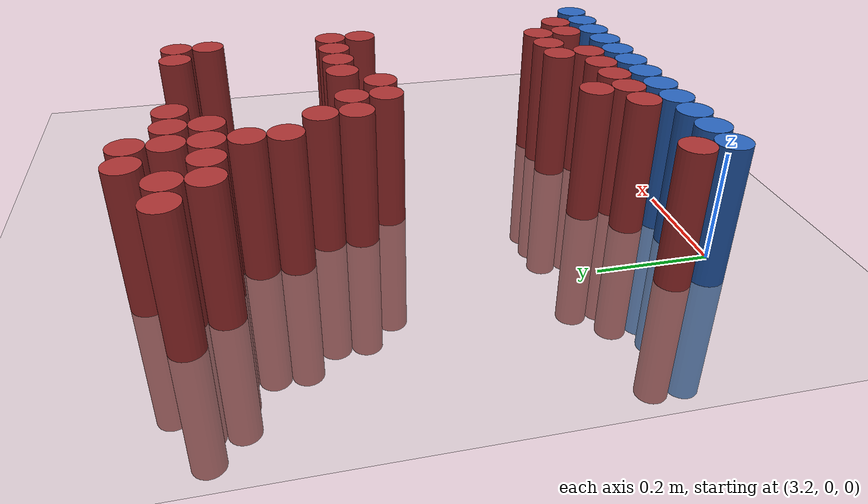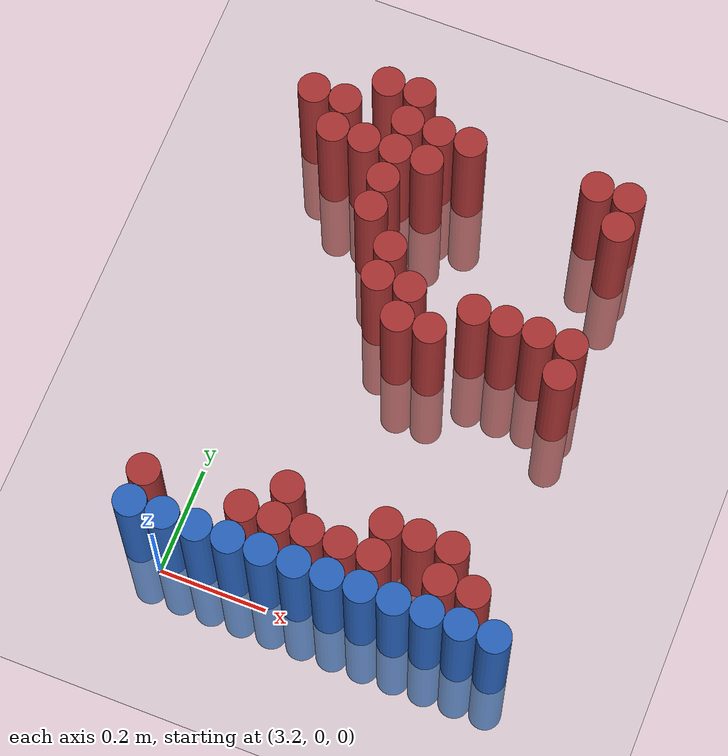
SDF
<sdf version="1.6">
 <world name="default">
  <model name="ground_plane">
   <static>1</static>
   <link name="link">
    <collision name="collision">
     <geometry><plane><normal>0 0 1</normal><size>100 100</size></plane></geometry>
     <surface><friction><ode><mu>100</mu><mu2>50</mu2></ode></friction></surface>
    </collision>
    <visual name="visual">
     <cast_shadows>0</cast_shadows>
     <geometry><plane><normal>0 0 1</normal><size>100 100</size></plane></geometry>
     <material>
      <script><uri>file://media/materials/scripts/gazebo.material</uri><name>Gazebo/Grey</name></script>
     </material>
    </visual>
   </link>
  </model>
  <model name="unit_cylinder_224">
   <static>1</static>
   <pose>3.270000 0.930000 0.000000 0.000000 0.000000 0.000000</pose>
   <link name="link">
    <inertial>
     <mass>1</mass>
     <inertia><ixx>0.145833</ixx><ixy>0</ixy><ixz>0</ixz><iyy>0.145833</iyy><iyz>0</iyz><izz>0.125</izz></inertia>
    </inertial>
    <collision name="collision">
     <geometry><cylinder><radius>0.030000</radius><length>0.5</length></cylinder></geometry>
    </collision>
    <visual name="visual">
     <geometry><cylinder><radius>0.030000</radius><length>0.5</length></cylinder></geometry>
     <material>
      <ambient>0.648000 0.192000 0.192000 1</ambient>
      <diffuse>0.648000 0.192000 0.192000 1</diffuse>
     </material>
     <material>
      <script><name>Gazebo/Grey</name><uri>file://media/materials/scripts/gazebo.material</uri></script>
     </material>
    </visual>
   </link>
  </model>
  <model name="unit_cylinder_225">
   <static>1</static>
   <pose>3.330000 0.930000 0.000000 0.000000 0.000000 0.000000</pose>
   <link name="link">
    <inertial>
     <mass>1</mass>
     <inertia><ixx>0.145833</ixx><ixy>0</ixy><ixz>0</ixz><iyy>0.145833</iyy><iyz>0</iyz><izz>0.125</izz></inertia>
    </inertial>
    <collision name="collision">
     <geometry><cylinder><radius>0.030000</radius><length>0.5</length></cylinder></geometry>
    </collision>
    <visual name="visual">
     <geometry><cylinder><radius>0.030000</radius><length>0.5</length></cylinder></geometry>
     <material>
      <ambient>0.648000 0.192000 0.192000 1</ambient>
      <diffuse>0.648000 0.192000 0.192000 1</diffuse>
     </material>
     <material>
      <script><name>Gazebo/Grey</name><uri>file://media/materials/scripts/gazebo.material</uri></script>
     </material>
    </visual>
   </link>
  </model>
  <model name="unit_cylinder_227">
   <static>1</static>
   <pose>3.150000 0.870000 0.000000 0.000000 0.000000 0.000000</pose>
   <link name="link">
    <inertial>
     <mass>1</mass>
     <inertia><ixx>0.145833</ixx><ixy>0</ixy><ixz>0</ixz><iyy>0.145833</iyy><iyz>0</iyz><izz>0.125</izz></inertia>
    </inertial>
    <collision name="collision">
     <geometry><cylinder><radius>0.030000</radius><length>0.5</length></cylinder></geometry>
    </collision>
    <visual name="visual">
     <geometry><cylinder><radius>0.030000</radius><length>0.5</length></cylinder></geometry>
     <material>
      <ambient>0.648000 0.192000 0.192000 1</ambient>
      <diffuse>0.648000 0.192000 0.192000 1</diffuse>
     </material>
     <material>
      <script><name>Gazebo/Grey</name><uri>file://media/materials/scripts/gazebo.material</uri></script>
     </material>
    </visual>
   </link>
  </model>
  <model name="unit_cylinder_228">
   <static>1</static>
   <pose>3.210000 0.870000 0.000000 0.000000 0.000000 0.000000</pose>
   <link name="link">
    <inertial>
     <mass>1</mass>
     <inertia><ixx>0.145833</ixx><ixy>0</ixy><ixz>0</ixz><iyy>0.145833</iyy><iyz>0</iyz><izz>0.125</izz></inertia>
    </inertial>
    <collision name="collision">
     <geometry><cylinder><radius>0.030000</radius><length>0.5</length></cylinder></geometry>
    </collision>
    <visual name="visual">
     <geometry><cylinder><radius>0.030000</radius><length>0.5</length></cylinder></geometry>
     <material>
      <ambient>0.648000 0.192000 0.192000 1</ambient>
      <diffuse>0.648000 0.192000 0.192000 1</diffuse>
     </material>
     <material>
      <script><name>Gazebo/Grey</name><uri>file://media/materials/scripts/gazebo.material</uri></script>
     </material>
    </visual>
   </link>
  </model>
  <model name="unit_cylinder_229">
   <static>1</static>
   <pose>3.330000 0.870000 0.000000 0.000000 0.000000 0.000000</pose>
   <link name="link">
    <inertial>
     <mass>1</mass>
     <inertia><ixx>0.145833</ixx><ixy>0</ixy><ixz>0</ixz><iyy>0.145833</iyy><iyz>0</iyz><izz>0.125</izz></inertia>
    </inertial>
    <collision name="collision">
     <geometry><cylinder><radius>0.030000</radius><length>0.5</length></cylinder></geometry>
    </collision>
    <visual name="visual">
     <geometry><cylinder><radius>0.030000</radius><length>0.5</length></cylinder></geometry>
     <material>
      <ambient>0.648000 0.192000 0.192000 1</ambient>
      <diffuse>0.648000 0.192000 0.192000 1</diffuse>
     </material>
     <material>
      <script><name>Gazebo/Grey</name><uri>file://media/materials/scripts/gazebo.material</uri></script>
     </material>
    </visual>
   </link>
  </model>
  <model name="unit_cylinder_230">
   <static>1</static>
   <pose>3.390000 0.870000 0.000000 0.000000 0.000000 0.000000</pose>
   <link name="link">
    <inertial>
     <mass>1</mass>
     <inertia><ixx>0.145833</ixx><ixy>0</ixy><ixz>0</ixz><iyy>0.145833</iyy><iyz>0</iyz><izz>0.125</izz></inertia>
    </inertial>
    <collision name="collision">
     <geometry><cylinder><radius>0.030000</radius><length>0.5</length></cylinder></geometry>
    </collision>
    <visual name="visual">
     <geometry><cylinder><radius>0.030000</radius><length>0.5</length></cylinder></geometry>
     <material>
      <ambient>0.648000 0.192000 0.192000 1</ambient>
      <diffuse>0.648000 0.192000 0.192000 1</diffuse>
     </material>
     <material>
      <script><name>Gazebo/Grey</name><uri>file://media/materials/scripts/gazebo.material</uri></script>
     </material>
    </visual>
   </link>
  </model>
  <model name="unit_cylinder_231">
   <static>1</static>
   <pose>3.450000 0.870000 0.000000 0.000000 0.000000 0.000000</pose>
   <link name="link">
    <inertial>
     <mass>1</mass>
     <inertia><ixx>0.145833</ixx><ixy>0</ixy><ixz>0</ixz><iyy>0.145833</iyy><iyz>0</iyz><izz>0.125</izz></inertia>
    </inertial>
    <collision name="collision">
     <geometry><cylinder><radius>0.030000</radius><length>0.5</length></cylinder></geometry>
    </collision>
    <visual name="visual">
     <geometry><cylinder><radius>0.030000</radius><length>0.5</length></cylinder></geometry>
     <material>
      <ambient>0.648000 0.192000 0.192000 1</ambient>
      <diffuse>0.648000 0.192000 0.192000 1</diffuse>
     </material>
     <material>
      <script><name>Gazebo/Grey</name><uri>file://media/materials/scripts/gazebo.material</uri></script>
     </material>
    </visual>
   </link>
  </model>
  <model name="unit_cylinder_232">
   <static>1</static>
   <pose>3.690000 0.870000 0.000000 0.000000 0.000000 0.000000</pose>
   <link name="link">
    <inertial>
     <mass>1</mass>
     <inertia><ixx>0.145833</ixx><ixy>0</ixy><ixz>0</ixz><iyy>0.145833</iyy><iyz>0</iyz><izz>0.125</izz></inertia>
    </inertial>
    <collision name="collision">
     <geometry><cylinder><radius>0.030000</radius><length>0.5</length></cylinder></geometry>
    </collision>
    <visual name="visual">
     <geometry><cylinder><radius>0.030000</radius><length>0.5</length></cylinder></geometry>
     <material>
      <ambient>0.648000 0.192000 0.192000 1</ambient>
      <diffuse>0.648000 0.192000 0.192000 1</diffuse>
     </material>
     <material>
      <script><name>Gazebo/Grey</name><uri>file://media/materials/scripts/gazebo.material</uri></script>
     </material>
    </visual>
   </link>
  </model>
  <model name="unit_cylinder_233">
   <static>1</static>
   <pose>3.750000 0.870000 0.000000 0.000000 0.000000 0.000000</pose>
   <link name="link">
    <inertial>
     <mass>1</mass>
     <inertia><ixx>0.145833</ixx><ixy>0</ixy><ixz>0</ixz><iyy>0.145833</iyy><iyz>0</iyz><izz>0.125</izz></inertia>
    </inertial>
    <collision name="collision">
     <geometry><cylinder><radius>0.030000</radius><length>0.5</length></cylinder></geometry>
    </collision>
    <visual name="visual">
     <geometry><cylinder><radius>0.030000</radius><length>0.5</length></cylinder></geometry>
     <material>
      <ambient>0.648000 0.192000 0.192000 1</ambient>
      <diffuse>0.648000 0.192000 0.192000 1</diffuse>
     </material>
     <material>
      <script><name>Gazebo/Grey</name><uri>file://media/materials/scripts/gazebo.material</uri></script>
     </material>
    </visual>
   </link>
  </model>
  <model name="unit_cylinder_237">
   <static>1</static>
   <pose>3.210000 0.810000 0.000000 0.000000 0.000000 0.000000</pose>
   <link name="link">
    <inertial>
     <mass>1</mass>
     <inertia><ixx>0.145833</ixx><ixy>0</ixy><ixz>0</ixz><iyy>0.145833</iyy><iyz>0</iyz><izz>0.125</izz></inertia>
    </inertial>
    <collision name="collision">
     <geometry><cylinder><radius>0.030000</radius><length>0.5</length></cylinder></geometry>
    </collision>
    <visual name="visual">
     <geometry><cylinder><radius>0.030000</radius><length>0.5</length></cylinder></geometry>
     <material>
      <ambient>0.648000 0.192000 0.192000 1</ambient>
      <diffuse>0.648000 0.192000 0.192000 1</diffuse>
     </material>
     <material>
      <script><name>Gazebo/Grey</name><uri>file://media/materials/scripts/gazebo.material</uri></script>
     </material>
    </visual>
   </link>
  </model>
  <model name="unit_cylinder_238">
   <static>1</static>
   <pose>3.270000 0.810000 0.000000 0.000000 0.000000 0.000000</pose>
   <link name="link">
    <inertial>
     <mass>1</mass>
     <inertia><ixx>0.145833</ixx><ixy>0</ixy><ixz>0</ixz><iyy>0.145833</iyy><iyz>0</iyz><izz>0.125</izz></inertia>
    </inertial>
    <collision name="collision">
     <geometry><cylinder><radius>0.030000</radius><length>0.5</length></cylinder></geometry>
    </collision>
    <visual name="visual">
     <geometry><cylinder><radius>0.030000</radius><length>0.5</length></cylinder></geometry>
     <material>
      <ambient>0.648000 0.192000 0.192000 1</ambient>
      <diffuse>0.648000 0.192000 0.192000 1</diffuse>
     </material>
     <material>
      <script><name>Gazebo/Grey</name><uri>file://media/materials/scripts/gazebo.material</uri></script>
     </material>
    </visual>
   </link>
  </model>
  <model name="unit_cylinder_239">
   <static>1</static>
   <pose>3.330000 0.810000 0.000000 0.000000 0.000000 0.000000</pose>
   <link name="link">
    <inertial>
     <mass>1</mass>
     <inertia><ixx>0.145833</ixx><ixy>0</ixy><ixz>0</ixz><iyy>0.145833</iyy><iyz>0</iyz><izz>0.125</izz></inertia>
    </inertial>
    <collision name="collision">
     <geometry><cylinder><radius>0.030000</radius><length>0.5</length></cylinder></geometry>
    </collision>
    <visual name="visual">
     <geometry><cylinder><radius>0.030000</radius><length>0.5</length></cylinder></geometry>
     <material>
      <ambient>0.648000 0.192000 0.192000 1</ambient>
      <diffuse>0.648000 0.192000 0.192000 1</diffuse>
     </material>
     <material>
      <script><name>Gazebo/Grey</name><uri>file://media/materials/scripts/gazebo.material</uri></script>
     </material>
    </visual>
   </link>
  </model>
  <model name="unit_cylinder_240">
   <static>1</static>
   <pose>3.390000 0.810000 0.000000 0.000000 0.000000 0.000000</pose>
   <link name="link">
    <inertial>
     <mass>1</mass>
     <inertia><ixx>0.145833</ixx><ixy>0</ixy><ixz>0</ixz><iyy>0.145833</iyy><iyz>0</iyz><izz>0.125</izz></inertia>
    </inertial>
    <collision name="collision">
     <geometry><cylinder><radius>0.030000</radius><length>0.5</length></cylinder></geometry>
    </collision>
    <visual name="visual">
     <geometry><cylinder><radius>0.030000</radius><length>0.5</length></cylinder></geometry>
     <material>
      <ambient>0.648000 0.192000 0.192000 1</ambient>
      <diffuse>0.648000 0.192000 0.192000 1</diffuse>
     </material>
     <material>
      <script><name>Gazebo/Grey</name><uri>file://media/materials/scripts/gazebo.material</uri></script>
     </material>
    </visual>
   </link>
  </model>
  <model name="unit_cylinder_241">
   <static>1</static>
   <pose>3.750000 0.810000 0.000000 0.000000 0.000000 0.000000</pose>
   <link name="link">
    <inertial>
     <mass>1</mass>
     <inertia><ixx>0.145833</ixx><ixy>0</ixy><ixz>0</ixz><iyy>0.145833</iyy><iyz>0</iyz><izz>0.125</izz></inertia>
    </inertial>
    <collision name="collision">
     <geometry><cylinder><radius>0.030000</radius><length>0.5</length></cylinder></geometry>
    </collision>
    <visual name="visual">
     <geometry><cylinder><radius>0.030000</radius><length>0.5</length></cylinder></geometry>
     <material>
      <ambient>0.648000 0.192000 0.192000 1</ambient>
      <diffuse>0.648000 0.192000 0.192000 1</diffuse>
     </material>
     <material>
      <script><name>Gazebo/Grey</name><uri>file://media/materials/scripts/gazebo.material</uri></script>
     </material>
    </visual>
   </link>
  </model>
  <model name="unit_cylinder_245">
   <static>1</static>
   <pose>3.330000 0.750000 0.000000 0.000000 0.000000 0.000000</pose>
   <link name="link">
    <inertial>
     <mass>1</mass>
     <inertia><ixx>0.145833</ixx><ixy>0</ixy><ixz>0</ixz><iyy>0.145833</iyy><iyz>0</iyz><izz>0.125</izz></inertia>
    </inertial>
    <collision name="collision">
     <geometry><cylinder><radius>0.030000</radius><length>0.5</length></cylinder></geometry>
    </collision>
    <visual name="visual">
     <geometry><cylinder><radius>0.030000</radius><length>0.5</length></cylinder></geometry>
     <material>
      <ambient>0.648000 0.192000 0.192000 1</ambient>
      <diffuse>0.648000 0.192000 0.192000 1</diffuse>
     </material>
     <material>
      <script><name>Gazebo/Grey</name><uri>file://media/materials/scripts/gazebo.material</uri></script>
     </material>
    </visual>
   </link>
  </model>
  <model name="unit_cylinder_249">
   <static>1</static>
   <pose>3.330000 0.690000 0.000000 0.000000 0.000000 0.000000</pose>
   <link name="link">
    <inertial>
     <mass>1</mass>
     <inertia><ixx>0.145833</ixx><ixy>0</ixy><ixz>0</ixz><iyy>0.145833</iyy><iyz>0</iyz><izz>0.125</izz></inertia>
    </inertial>
    <collision name="collision">
     <geometry><cylinder><radius>0.030000</radius><length>0.5</length></cylinder></geometry>
    </collision>
    <visual name="visual">
     <geometry><cylinder><radius>0.030000</radius><length>0.5</length></cylinder></geometry>
     <material>
      <ambient>0.648000 0.192000 0.192000 1</ambient>
      <diffuse>0.648000 0.192000 0.192000 1</diffuse>
     </material>
     <material>
      <script><name>Gazebo/Grey</name><uri>file://media/materials/scripts/gazebo.material</uri></script>
     </material>
    </visual>
   </link>
  </model>
  <model name="unit_cylinder_252">
   <static>1</static>
   <pose>3.390000 0.630000 0.000000 0.000000 0.000000 0.000000</pose>
   <link name="link">
    <inertial>
     <mass>1</mass>
     <inertia><ixx>0.145833</ixx><ixy>0</ixy><ixz>0</ixz><iyy>0.145833</iyy><iyz>0</iyz><izz>0.125</izz></inertia>
    </inertial>
    <collision name="collision">
     <geometry><cylinder><radius>0.030000</radius><length>0.5</length></cylinder></geometry>
    </collision>
    <visual name="visual">
     <geometry><cylinder><radius>0.030000</radius><length>0.5</length></cylinder></geometry>
     <material>
      <ambient>0.648000 0.192000 0.192000 1</ambient>
      <diffuse>0.648000 0.192000 0.192000 1</diffuse>
     </material>
     <material>
      <script><name>Gazebo/Grey</name><uri>file://media/materials/scripts/gazebo.material</uri></script>
     </material>
    </visual>
   </link>
  </model>
  <model name="unit_cylinder_256">
   <static>1</static>
   <pose>3.390000 0.570000 0.000000 0.000000 0.000000 0.000000</pose>
   <link name="link">
    <inertial>
     <mass>1</mass>
     <inertia><ixx>0.145833</ixx><ixy>0</ixy><ixz>0</ixz><iyy>0.145833</iyy><iyz>0</iyz><izz>0.125</izz></inertia>
    </inertial>
    <collision name="collision">
     <geometry><cylinder><radius>0.030000</radius><length>0.5</length></cylinder></geometry>
    </collision>
    <visual name="visual">
     <geometry><cylinder><radius>0.030000</radius><length>0.5</length></cylinder></geometry>
     <material>
      <ambient>0.648000 0.192000 0.192000 1</ambient>
      <diffuse>0.648000 0.192000 0.192000 1</diffuse>
     </material>
     <material>
      <script><name>Gazebo/Grey</name><uri>file://media/materials/scripts/gazebo.material</uri></script>
     </material>
    </visual>
   </link>
  </model>
  <model name="unit_cylinder_257">
   <static>1</static>
   <pose>3.450000 0.570000 0.000000 0.000000 0.000000 0.000000</pose>
   <link name="link">
    <inertial>
     <mass>1</mass>
     <inertia><ixx>0.145833</ixx><ixy>0</ixy><ixz>0</ixz><iyy>0.145833</iyy><iyz>0</iyz><izz>0.125</izz></inertia>
    </inertial>
    <collision name="collision">
     <geometry><cylinder><radius>0.030000</radius><length>0.5</length></cylinder></geometry>
    </collision>
    <visual name="visual">
     <geometry><cylinder><radius>0.030000</radius><length>0.5</length></cylinder></geometry>
     <material>
      <ambient>0.648000 0.192000 0.192000 1</ambient>
      <diffuse>0.648000 0.192000 0.192000 1</diffuse>
     </material>
     <material>
      <script><name>Gazebo/Grey</name><uri>file://media/materials/scripts/gazebo.material</uri></script>
     </material>
    </visual>
   </link>
  </model>
  <model name="unit_cylinder_258">
   <static>1</static>
   <pose>3.570000 0.570000 0.000000 0.000000 0.000000 0.000000</pose>
   <link name="link">
    <inertial>
     <mass>1</mass>
     <inertia><ixx>0.145833</ixx><ixy>0</ixy><ixz>0</ixz><iyy>0.145833</iyy><iyz>0</iyz><izz>0.125</izz></inertia>
    </inertial>
    <collision name="collision">
     <geometry><cylinder><radius>0.030000</radius><length>0.5</length></cylinder></geometry>
    </collision>
    <visual name="visual">
     <geometry><cylinder><radius>0.030000</radius><length>0.5</length></cylinder></geometry>
     <material>
      <ambient>0.648000 0.192000 0.192000 1</ambient>
      <diffuse>0.648000 0.192000 0.192000 1</diffuse>
     </material>
     <material>
      <script><name>Gazebo/Grey</name><uri>file://media/materials/scripts/gazebo.material</uri></script>
     </material>
    </visual>
   </link>
  </model>
  <model name="unit_cylinder_259">
   <static>1</static>
   <pose>3.630000 0.570000 0.000000 0.000000 0.000000 0.000000</pose>
   <link name="link">
    <inertial>
     <mass>1</mass>
     <inertia><ixx>0.145833</ixx><ixy>0</ixy><ixz>0</ixz><iyy>0.145833</iyy><iyz>0</iyz><izz>0.125</izz></inertia>
    </inertial>
    <collision name="collision">
     <geometry><cylinder><radius>0.030000</radius><length>0.5</length></cylinder></geometry>
    </collision>
    <visual name="visual">
     <geometry><cylinder><radius>0.030000</radius><length>0.5</length></cylinder></geometry>
     <material>
      <ambient>0.648000 0.192000 0.192000 1</ambient>
      <diffuse>0.648000 0.192000 0.192000 1</diffuse>
     </material>
     <material>
      <script><name>Gazebo/Grey</name><uri>file://media/materials/scripts/gazebo.material</uri></script>
     </material>
    </visual>
   </link>
  </model>
  <model name="unit_cylinder_260">
   <static>1</static>
   <pose>3.690000 0.570000 0.000000 0.000000 0.000000 0.000000</pose>
   <link name="link">
    <inertial>
     <mass>1</mass>
     <inertia><ixx>0.145833</ixx><ixy>0</ixy><ixz>0</ixz><iyy>0.145833</iyy><iyz>0</iyz><izz>0.125</izz></inertia>
    </inertial>
    <collision name="collision">
     <geometry><cylinder><radius>0.030000</radius><length>0.5</length></cylinder></geometry>
    </collision>
    <visual name="visual">
     <geometry><cylinder><radius>0.030000</radius><length>0.5</length></cylinder></geometry>
     <material>
      <ambient>0.648000 0.192000 0.192000 1</ambient>
      <diffuse>0.648000 0.192000 0.192000 1</diffuse>
     </material>
     <material>
      <script><name>Gazebo/Grey</name><uri>file://media/materials/scripts/gazebo.material</uri></script>
     </material>
    </visual>
   </link>
  </model>
  <model name="unit_cylinder_261">
   <static>1</static>
   <pose>3.750000 0.570000 0.000000 0.000000 0.000000 0.000000</pose>
   <link name="link">
    <inertial>
     <mass>1</mass>
     <inertia><ixx>0.145833</ixx><ixy>0</ixy><ixz>0</ixz><iyy>0.145833</iyy><iyz>0</iyz><izz>0.125</izz></inertia>
    </inertial>
    <collision name="collision">
     <geometry><cylinder><radius>0.030000</radius><length>0.5</length></cylinder></geometry>
    </collision>
    <visual name="visual">
     <geometry><cylinder><radius>0.030000</radius><length>0.5</length></cylinder></geometry>
     <material>
      <ambient>0.648000 0.192000 0.192000 1</ambient>
      <diffuse>0.648000 0.192000 0.192000 1</diffuse>
     </material>
     <material>
      <script><name>Gazebo/Grey</name><uri>file://media/materials/scripts/gazebo.material</uri></script>
     </material>
    </visual>
   </link>
  </model>
  <model name="unit_cylinder_267">
   <static>1</static>
   <pose>3.450000 0.510000 0.000000 0.000000 0.000000 0.000000</pose>
   <link name="link">
    <inertial>
     <mass>1</mass>
     <inertia><ixx>0.145833</ixx><ixy>0</ixy><ixz>0</ixz><iyy>0.145833</iyy><iyz>0</iyz><izz>0.125</izz></inertia>
    </inertial>
    <collision name="collision">
     <geometry><cylinder><radius>0.030000</radius><length>0.5</length></cylinder></geometry>
    </collision>
    <visual name="visual">
     <geometry><cylinder><radius>0.030000</radius><length>0.5</length></cylinder></geometry>
     <material>
      <ambient>0.648000 0.192000 0.192000 1</ambient>
      <diffuse>0.648000 0.192000 0.192000 1</diffuse>
     </material>
     <material>
      <script><name>Gazebo/Grey</name><uri>file://media/materials/scripts/gazebo.material</uri></script>
     </material>
    </visual>
   </link>
  </model>
  <model name="unit_cylinder_268">
   <static>1</static>
   <pose>3.510000 0.510000 0.000000 0.000000 0.000000 0.000000</pose>
   <link name="link">
    <inertial>
     <mass>1</mass>
     <inertia><ixx>0.145833</ixx><ixy>0</ixy><ixz>0</ixz><iyy>0.145833</iyy><iyz>0</iyz><izz>0.125</izz></inertia>
    </inertial>
    <collision name="collision">
     <geometry><cylinder><radius>0.030000</radius><length>0.5</length></cylinder></geometry>
    </collision>
    <visual name="visual">
     <geometry><cylinder><radius>0.030000</radius><length>0.5</length></cylinder></geometry>
     <material>
      <ambient>0.648000 0.192000 0.192000 1</ambient>
      <diffuse>0.648000 0.192000 0.192000 1</diffuse>
     </material>
     <material>
      <script><name>Gazebo/Grey</name><uri>file://media/materials/scripts/gazebo.material</uri></script>
     </material>
    </visual>
   </link>
  </model>
  <model name="unit_cylinder_269">
   <static>1</static>
   <pose>3.750000 0.510000 0.000000 0.000000 0.000000 0.000000</pose>
   <link name="link">
    <inertial>
     <mass>1</mass>
     <inertia><ixx>0.145833</ixx><ixy>0</ixy><ixz>0</ixz><iyy>0.145833</iyy><iyz>0</iyz><izz>0.125</izz></inertia>
    </inertial>
    <collision name="collision">
     <geometry><cylinder><radius>0.030000</radius><length>0.5</length></cylinder></geometry>
    </collision>
    <visual name="visual">
     <geometry><cylinder><radius>0.030000</radius><length>0.5</length></cylinder></geometry>
     <material>
      <ambient>0.648000 0.192000 0.192000 1</ambient>
      <diffuse>0.648000 0.192000 0.192000 1</diffuse>
     </material>
     <material>
      <script><name>Gazebo/Grey</name><uri>file://media/materials/scripts/gazebo.material</uri></script>
     </material>
    </visual>
   </link>
  </model>
  <model name="unit_cylinder_290">
   <static>1</static>
   <pose>3.390000 0.150000 0.000000 0.000000 0.000000 0.000000</pose>
   <link name="link">
    <inertial>
     <mass>1</mass>
     <inertia><ixx>0.145833</ixx><ixy>0</ixy><ixz>0</ixz><iyy>0.145833</iyy><iyz>0</iyz><izz>0.125</izz></inertia>
    </inertial>
    <collision name="collision">
     <geometry><cylinder><radius>0.030000</radius><length>0.5</length></cylinder></geometry>
    </collision>
    <visual name="visual">
     <geometry><cylinder><radius>0.030000</radius><length>0.5</length></cylinder></geometry>
     <material>
      <ambient>0.648000 0.192000 0.192000 1</ambient>
      <diffuse>0.648000 0.192000 0.192000 1</diffuse>
     </material>
     <material>
      <script><name>Gazebo/Grey</name><uri>file://media/materials/scripts/gazebo.material</uri></script>
     </material>
    </visual>
   </link>
  </model>
  <model name="unit_cylinder_291">
   <static>1</static>
   <pose>3.570000 0.150000 0.000000 0.000000 0.000000 0.000000</pose>
   <link name="link">
    <inertial>
     <mass>1</mass>
     <inertia><ixx>0.145833</ixx><ixy>0</ixy><ixz>0</ixz><iyy>0.145833</iyy><iyz>0</iyz><izz>0.125</izz></inertia>
    </inertial>
    <collision name="collision">
     <geometry><cylinder><radius>0.030000</radius><length>0.5</length></cylinder></geometry>
    </collision>
    <visual name="visual">
     <geometry><cylinder><radius>0.030000</radius><length>0.5</length></cylinder></geometry>
     <material>
      <ambient>0.648000 0.192000 0.192000 1</ambient>
      <diffuse>0.648000 0.192000 0.192000 1</diffuse>
     </material>
     <material>
      <script><name>Gazebo/Grey</name><uri>file://media/materials/scripts/gazebo.material</uri></script>
     </material>
    </visual>
   </link>
  </model>
  <model name="unit_cylinder_292">
   <static>1</static>
   <pose>3.630000 0.150000 0.000000 0.000000 0.000000 0.000000</pose>
   <link name="link">
    <inertial>
     <mass>1</mass>
     <inertia><ixx>0.145833</ixx><ixy>0</ixy><ixz>0</ixz><iyy>0.145833</iyy><iyz>0</iyz><izz>0.125</izz></inertia>
    </inertial>
    <collision name="collision">
     <geometry><cylinder><radius>0.030000</radius><length>0.5</length></cylinder></geometry>
    </collision>
    <visual name="visual">
     <geometry><cylinder><radius>0.030000</radius><length>0.5</length></cylinder></geometry>
     <material>
      <ambient>0.648000 0.192000 0.192000 1</ambient>
      <diffuse>0.648000 0.192000 0.192000 1</diffuse>
     </material>
     <material>
      <script><name>Gazebo/Grey</name><uri>file://media/materials/scripts/gazebo.material</uri></script>
     </material>
    </visual>
   </link>
  </model>
  <model name="unit_cylinder_293">
   <static>1</static>
   <pose>3.690000 0.150000 0.000000 0.000000 0.000000 0.000000</pose>
   <link name="link">
    <inertial>
     <mass>1</mass>
     <inertia><ixx>0.145833</ixx><ixy>0</ixy><ixz>0</ixz><iyy>0.145833</iyy><iyz>0</iyz><izz>0.125</izz></inertia>
    </inertial>
    <collision name="collision">
     <geometry><cylinder><radius>0.030000</radius><length>0.5</length></cylinder></geometry>
    </collision>
    <visual name="visual">
     <geometry><cylinder><radius>0.030000</radius><length>0.5</length></cylinder></geometry>
     <material>
      <ambient>0.648000 0.192000 0.192000 1</ambient>
      <diffuse>0.648000 0.192000 0.192000 1</diffuse>
     </material>
     <material>
      <script><name>Gazebo/Grey</name><uri>file://media/materials/scripts/gazebo.material</uri></script>
     </material>
    </visual>
   </link>
  </model>
  <model name="unit_cylinder_309">
   <static>1</static>
   <pose>3.150000 0.090000 0.000000 0.000000 0.000000 0.000000</pose>
   <link name="link">
    <inertial>
     <mass>1</mass>
     <inertia><ixx>0.145833</ixx><ixy>0</ixy><ixz>0</ixz><iyy>0.145833</iyy><iyz>0</iyz><izz>0.125</izz></inertia>
    </inertial>
    <collision name="collision">
     <geometry><cylinder><radius>0.030000</radius><length>0.5</length></cylinder></geometry>
    </collision>
    <visual name="visual">
     <geometry><cylinder><radius>0.030000</radius><length>0.5</length></cylinder></geometry>
     <material>
      <ambient>0.648000 0.192000 0.192000 1</ambient>
      <diffuse>0.648000 0.192000 0.192000 1</diffuse>
     </material>
     <material>
      <script><name>Gazebo/Grey</name><uri>file://media/materials/scripts/gazebo.material</uri></script>
     </material>
    </visual>
   </link>
  </model>
  <model name="unit_cylinder_310">
   <static>1</static>
   <pose>3.330000 0.090000 0.000000 0.000000 0.000000 0.000000</pose>
   <link name="link">
    <inertial>
     <mass>1</mass>
     <inertia><ixx>0.145833</ixx><ixy>0</ixy><ixz>0</ixz><iyy>0.145833</iyy><iyz>0</iyz><izz>0.125</izz></inertia>
    </inertial>
    <collision name="collision">
     <geometry><cylinder><radius>0.030000</radius><length>0.5</length></cylinder></geometry>
    </collision>
    <visual name="visual">
     <geometry><cylinder><radius>0.030000</radius><length>0.5</length></cylinder></geometry>
     <material>
      <ambient>0.648000 0.192000 0.192000 1</ambient>
      <diffuse>0.648000 0.192000 0.192000 1</diffuse>
     </material>
     <material>
      <script><name>Gazebo/Grey</name><uri>file://media/materials/scripts/gazebo.material</uri></script>
     </material>
    </visual>
   </link>
  </model>
  <model name="unit_cylinder_311">
   <static>1</static>
   <pose>3.390000 0.090000 0.000000 0.000000 0.000000 0.000000</pose>
   <link name="link">
    <inertial>
     <mass>1</mass>
     <inertia><ixx>0.145833</ixx><ixy>0</ixy><ixz>0</ixz><iyy>0.145833</iyy><iyz>0</iyz><izz>0.125</izz></inertia>
    </inertial>
    <collision name="collision">
     <geometry><cylinder><radius>0.030000</radius><length>0.5</length></cylinder></geometry>
    </collision>
    <visual name="visual">
     <geometry><cylinder><radius>0.030000</radius><length>0.5</length></cylinder></geometry>
     <material>
      <ambient>0.648000 0.192000 0.192000 1</ambient>
      <diffuse>0.648000 0.192000 0.192000 1</diffuse>
     </material>
     <material>
      <script><name>Gazebo/Grey</name><uri>file://media/materials/scripts/gazebo.material</uri></script>
     </material>
    </visual>
   </link>
  </model>
  <model name="unit_cylinder_312">
   <static>1</static>
   <pose>3.450000 0.090000 0.000000 0.000000 0.000000 0.000000</pose>
   <link name="link">
    <inertial>
     <mass>1</mass>
     <inertia><ixx>0.145833</ixx><ixy>0</ixy><ixz>0</ixz><iyy>0.145833</iyy><iyz>0</iyz><izz>0.125</izz></inertia>
    </inertial>
    <collision name="collision">
     <geometry><cylinder><radius>0.030000</radius><length>0.5</length></cylinder></geometry>
    </collision>
    <visual name="visual">
     <geometry><cylinder><radius>0.030000</radius><length>0.5</length></cylinder></geometry>
     <material>
      <ambient>0.648000 0.192000 0.192000 1</ambient>
      <diffuse>0.648000 0.192000 0.192000 1</diffuse>
     </material>
     <material>
      <script><name>Gazebo/Grey</name><uri>file://media/materials/scripts/gazebo.material</uri></script>
     </material>
    </visual>
   </link>
  </model>
  <model name="unit_cylinder_313">
   <static>1</static>
   <pose>3.510000 0.090000 0.000000 0.000000 0.000000 0.000000</pose>
   <link name="link">
    <inertial>
     <mass>1</mass>
     <inertia><ixx>0.145833</ixx><ixy>0</ixy><ixz>0</ixz><iyy>0.145833</iyy><iyz>0</iyz><izz>0.125</izz></inertia>
    </inertial>
    <collision name="collision">
     <geometry><cylinder><radius>0.030000</radius><length>0.5</length></cylinder></geometry>
    </collision>
    <visual name="visual">
     <geometry><cylinder><radius>0.030000</radius><length>0.5</length></cylinder></geometry>
     <material>
      <ambient>0.648000 0.192000 0.192000 1</ambient>
      <diffuse>0.648000 0.192000 0.192000 1</diffuse>
     </material>
     <material>
      <script><name>Gazebo/Grey</name><uri>file://media/materials/scripts/gazebo.material</uri></script>
     </material>
    </visual>
   </link>
  </model>
  <model name="unit_cylinder_314">
   <static>1</static>
   <pose>3.570000 0.090000 0.000000 0.000000 0.000000 0.000000</pose>
   <link name="link">
    <inertial>
     <mass>1</mass>
     <inertia><ixx>0.145833</ixx><ixy>0</ixy><ixz>0</ixz><iyy>0.145833</iyy><iyz>0</iyz><izz>0.125</izz></inertia>
    </inertial>
    <collision name="collision">
     <geometry><cylinder><radius>0.030000</radius><length>0.5</length></cylinder></geometry>
    </collision>
    <visual name="visual">
     <geometry><cylinder><radius>0.030000</radius><length>0.5</length></cylinder></geometry>
     <material>
      <ambient>0.648000 0.192000 0.192000 1</ambient>
      <diffuse>0.648000 0.192000 0.192000 1</diffuse>
     </material>
     <material>
      <script><name>Gazebo/Grey</name><uri>file://media/materials/scripts/gazebo.material</uri></script>
     </material>
    </visual>
   </link>
  </model>
  <model name="unit_cylinder_315">
   <static>1</static>
   <pose>3.690000 0.090000 0.000000 0.000000 0.000000 0.000000</pose>
   <link name="link">
    <inertial>
     <mass>1</mass>
     <inertia><ixx>0.145833</ixx><ixy>0</ixy><ixz>0</ixz><iyy>0.145833</iyy><iyz>0</iyz><izz>0.125</izz></inertia>
    </inertial>
    <collision name="collision">
     <geometry><cylinder><radius>0.030000</radius><length>0.5</length></cylinder></geometry>
    </collision>
    <visual name="visual">
     <geometry><cylinder><radius>0.030000</radius><length>0.5</length></cylinder></geometry>
     <material>
      <ambient>0.648000 0.192000 0.192000 1</ambient>
      <diffuse>0.648000 0.192000 0.192000 1</diffuse>
     </material>
     <material>
      <script><name>Gazebo/Grey</name><uri>file://media/materials/scripts/gazebo.material</uri></script>
     </material>
    </visual>
   </link>
  </model>
  <model name="unit_cylinder_316">
   <static>1</static>
   <pose>3.750000 0.090000 0.000000 0.000000 0.000000 0.000000</pose>
   <link name="link">
    <inertial>
     <mass>1</mass>
     <inertia><ixx>0.145833</ixx><ixy>0</ixy><ixz>0</ixz><iyy>0.145833</iyy><iyz>0</iyz><izz>0.125</izz></inertia>
    </inertial>
    <collision name="collision">
     <geometry><cylinder><radius>0.030000</radius><length>0.5</length></cylinder></geometry>
    </collision>
    <visual name="visual">
     <geometry><cylinder><radius>0.030000</radius><length>0.5</length></cylinder></geometry>
     <material>
      <ambient>0.648000 0.192000 0.192000 1</ambient>
      <diffuse>0.648000 0.192000 0.192000 1</diffuse>
     </material>
     <material>
      <script><name>Gazebo/Grey</name><uri>file://media/materials/scripts/gazebo.material</uri></script>
     </material>
    </visual>
   </link>
  </model>
  <model name="unit_cylinder_335">
   <static>1</static>
   <pose>3.150000 0.030000 0.000000 0.000000 0.000000 0.000000</pose>
   <link name="link">
    <inertial>
     <mass>1</mass>
     <inertia><ixx>0.145833</ixx><ixy>0</ixy><ixz>0</ixz><iyy>0.145833</iyy><iyz>0</iyz><izz>0.125</izz></inertia>
    </inertial>
    <collision name="collision">
     <geometry><cylinder><radius>0.030000</radius><length>0.5</length></cylinder></geometry>
    </collision>
    <visual name="visual">
     <geometry><cylinder><radius>0.030000</radius><length>0.5</length></cylinder></geometry>
     <material>
      <ambient>0.152000 0.379000 0.720000 1</ambient>
      <diffuse>0.152000 0.379000 0.720000 1</diffuse>
     </material>
     <material>
      <script><name>Gazebo/Grey</name><uri>file://media/materials/scripts/gazebo.material</uri></script>
     </material>
    </visual>
   </link>
  </model>
  <model name="unit_cylinder_336">
   <static>1</static>
   <pose>3.210000 0.030000 0.000000 0.000000 0.000000 0.000000</pose>
   <link name="link">
    <inertial>
     <mass>1</mass>
     <inertia><ixx>0.145833</ixx><ixy>0</ixy><ixz>0</ixz><iyy>0.145833</iyy><iyz>0</iyz><izz>0.125</izz></inertia>
    </inertial>
    <collision name="collision">
     <geometry><cylinder><radius>0.030000</radius><length>0.5</length></cylinder></geometry>
    </collision>
    <visual name="visual">
     <geometry><cylinder><radius>0.030000</radius><length>0.5</length></cylinder></geometry>
     <material>
      <ambient>0.152000 0.379000 0.720000 1</ambient>
      <diffuse>0.152000 0.379000 0.720000 1</diffuse>
     </material>
     <material>
      <script><name>Gazebo/Grey</name><uri>file://media/materials/scripts/gazebo.material</uri></script>
     </material>
    </visual>
   </link>
  </model>
  <model name="unit_cylinder_337">
   <static>1</static>
   <pose>3.270000 0.030000 0.000000 0.000000 0.000000 0.000000</pose>
   <link name="link">
    <inertial>
     <mass>1</mass>
     <inertia><ixx>0.145833</ixx><ixy>0</ixy><ixz>0</ixz><iyy>0.145833</iyy><iyz>0</iyz><izz>0.125</izz></inertia>
    </inertial>
    <collision name="collision">
     <geometry><cylinder><radius>0.030000</radius><length>0.5</length></cylinder></geometry>
    </collision>
    <visual name="visual">
     <geometry><cylinder><radius>0.030000</radius><length>0.5</length></cylinder></geometry>
     <material>
      <ambient>0.152000 0.379000 0.720000 1</ambient>
      <diffuse>0.152000 0.379000 0.720000 1</diffuse>
     </material>
     <material>
      <script><name>Gazebo/Grey</name><uri>file://media/materials/scripts/gazebo.material</uri></script>
     </material>
    </visual>
   </link>
  </model>
  <model name="unit_cylinder_338">
   <static>1</static>
   <pose>3.330000 0.030000 0.000000 0.000000 0.000000 0.000000</pose>
   <link name="link">
    <inertial>
     <mass>1</mass>
     <inertia><ixx>0.145833</ixx><ixy>0</ixy><ixz>0</ixz><iyy>0.145833</iyy><iyz>0</iyz><izz>0.125</izz></inertia>
    </inertial>
    <collision name="collision">
     <geometry><cylinder><radius>0.030000</radius><length>0.5</length></cylinder></geometry>
    </collision>
    <visual name="visual">
     <geometry><cylinder><radius>0.030000</radius><length>0.5</length></cylinder></geometry>
     <material>
      <ambient>0.152000 0.379000 0.720000 1</ambient>
      <diffuse>0.152000 0.379000 0.720000 1</diffuse>
     </material>
     <material>
      <script><name>Gazebo/Grey</name><uri>file://media/materials/scripts/gazebo.material</uri></script>
     </material>
    </visual>
   </link>
  </model>
  <model name="unit_cylinder_339">
   <static>1</static>
   <pose>3.390000 0.030000 0.000000 0.000000 0.000000 0.000000</pose>
   <link name="link">
    <inertial>
     <mass>1</mass>
     <inertia><ixx>0.145833</ixx><ixy>0</ixy><ixz>0</ixz><iyy>0.145833</iyy><iyz>0</iyz><izz>0.125</izz></inertia>
    </inertial>
    <collision name="collision">
     <geometry><cylinder><radius>0.030000</radius><length>0.5</length></cylinder></geometry>
    </collision>
    <visual name="visual">
     <geometry><cylinder><radius>0.030000</radius><length>0.5</length></cylinder></geometry>
     <material>
      <ambient>0.152000 0.379000 0.720000 1</ambient>
      <diffuse>0.152000 0.379000 0.720000 1</diffuse>
     </material>
     <material>
      <script><name>Gazebo/Grey</name><uri>file://media/materials/scripts/gazebo.material</uri></script>
     </material>
    </visual>
   </link>
  </model>
  <model name="unit_cylinder_340">
   <static>1</static>
   <pose>3.450000 0.030000 0.000000 0.000000 0.000000 0.000000</pose>
   <link name="link">
    <inertial>
     <mass>1</mass>
     <inertia><ixx>0.145833</ixx><ixy>0</ixy><ixz>0</ixz><iyy>0.145833</iyy><iyz>0</iyz><izz>0.125</izz></inertia>
    </inertial>
    <collision name="collision">
     <geometry><cylinder><radius>0.030000</radius><length>0.5</length></cylinder></geometry>
    </collision>
    <visual name="visual">
     <geometry><cylinder><radius>0.030000</radius><length>0.5</length></cylinder></geometry>
     <material>
      <ambient>0.152000 0.379000 0.720000 1</ambient>
      <diffuse>0.152000 0.379000 0.720000 1</diffuse>
     </material>
     <material>
      <script><name>Gazebo/Grey</name><uri>file://media/materials/scripts/gazebo.material</uri></script>
     </material>
    </visual>
   </link>
  </model>
  <model name="unit_cylinder_341">
   <static>1</static>
   <pose>3.510000 0.030000 0.000000 0.000000 0.000000 0.000000</pose>
   <link name="link">
    <inertial>
     <mass>1</mass>
     <inertia><ixx>0.145833</ixx><ixy>0</ixy><ixz>0</ixz><iyy>0.145833</iyy><iyz>0</iyz><izz>0.125</izz></inertia>
    </inertial>
    <collision name="collision">
     <geometry><cylinder><radius>0.030000</radius><length>0.5</length></cylinder></geometry>
    </collision>
    <visual name="visual">
     <geometry><cylinder><radius>0.030000</radius><length>0.5</length></cylinder></geometry>
     <material>
      <ambient>0.152000 0.379000 0.720000 1</ambient>
      <diffuse>0.152000 0.379000 0.720000 1</diffuse>
     </material>
     <material>
      <script><name>Gazebo/Grey</name><uri>file://media/materials/scripts/gazebo.material</uri></script>
     </material>
    </visual>
   </link>
  </model>
  <model name="unit_cylinder_342">
   <static>1</static>
   <pose>3.570000 0.030000 0.000000 0.000000 0.000000 0.000000</pose>
   <link name="link">
    <inertial>
     <mass>1</mass>
     <inertia><ixx>0.145833</ixx><ixy>0</ixy><ixz>0</ixz><iyy>0.145833</iyy><iyz>0</iyz><izz>0.125</izz></inertia>
    </inertial>
    <collision name="collision">
     <geometry><cylinder><radius>0.030000</radius><length>0.5</length></cylinder></geometry>
    </collision>
    <visual name="visual">
     <geometry><cylinder><radius>0.030000</radius><length>0.5</length></cylinder></geometry>
     <material>
      <ambient>0.152000 0.379000 0.720000 1</ambient>
      <diffuse>0.152000 0.379000 0.720000 1</diffuse>
     </material>
     <material>
      <script><name>Gazebo/Grey</name><uri>file://media/materials/scripts/gazebo.material</uri></script>
     </material>
    </visual>
   </link>
  </model>
  <model name="unit_cylinder_343">
   <static>1</static>
   <pose>3.630000 0.030000 0.000000 0.000000 0.000000 0.000000</pose>
   <link name="link">
    <inertial>
     <mass>1</mass>
     <inertia><ixx>0.145833</ixx><ixy>0</ixy><ixz>0</ixz><iyy>0.145833</iyy><iyz>0</iyz><izz>0.125</izz></inertia>
    </inertial>
    <collision name="collision">
     <geometry><cylinder><radius>0.030000</radius><length>0.5</length></cylinder></geometry>
    </collision>
    <visual name="visual">
     <geometry><cylinder><radius>0.030000</radius><length>0.5</length></cylinder></geometry>
     <material>
      <ambient>0.152000 0.379000 0.720000 1</ambient>
      <diffuse>0.152000 0.379000 0.720000 1</diffuse>
     </material>
     <material>
      <script><name>Gazebo/Grey</name><uri>file://media/materials/scripts/gazebo.material</uri></script>
     </material>
    </visual>
   </link>
  </model>
  <model name="unit_cylinder_344">
   <static>1</static>
   <pose>3.690000 0.030000 0.000000 0.000000 0.000000 0.000000</pose>
   <link name="link">
    <inertial>
     <mass>1</mass>
     <inertia><ixx>0.145833</ixx><ixy>0</ixy><ixz>0</ixz><iyy>0.145833</iyy><iyz>0</iyz><izz>0.125</izz></inertia>
    </inertial>
    <collision name="collision">
     <geometry><cylinder><radius>0.030000</radius><length>0.5</length></cylinder></geometry>
    </collision>
    <visual name="visual">
     <geometry><cylinder><radius>0.030000</radius><length>0.5</length></cylinder></geometry>
     <material>
      <ambient>0.152000 0.379000 0.720000 1</ambient>
      <diffuse>0.152000 0.379000 0.720000 1</diffuse>
     </material>
     <material>
      <script><name>Gazebo/Grey</name><uri>file://media/materials/scripts/gazebo.material</uri></script>
     </material>
    </visual>
   </link>
  </model>
  <model name="unit_cylinder_345">
   <static>1</static>
   <pose>3.750000 0.030000 0.000000 0.000000 0.000000 0.000000</pose>
   <link name="link">
    <inertial>
     <mass>1</mass>
     <inertia><ixx>0.145833</ixx><ixy>0</ixy><ixz>0</ixz><iyy>0.145833</iyy><iyz>0</iyz><izz>0.125</izz></inertia>
    </inertial>
    <collision name="collision">
     <geometry><cylinder><radius>0.030000</radius><length>0.5</length></cylinder></geometry>
    </collision>
    <visual name="visual">
     <geometry><cylinder><radius>0.030000</radius><length>0.5</length></cylinder></geometry>
     <material>
      <ambient>0.152000 0.379000 0.720000 1</ambient>
      <diffuse>0.152000 0.379000 0.720000 1</diffuse>
     </material>
     <material>
      <script><name>Gazebo/Grey</name><uri>file://media/materials/scripts/gazebo.material</uri></script>
     </material>
    </visual>
   </link>
  </model>
  <model name="unit_cylinder_346">
   <static>1</static>
   <pose>3.810000 0.030000 0.000000 0.000000 0.000000 0.000000</pose>
   <link name="link">
    <inertial>
     <mass>1</mass>
     <inertia><ixx>0.145833</ixx><ixy>0</ixy><ixz>0</ixz><iyy>0.145833</iyy><iyz>0</iyz><izz>0.125</izz></inertia>
    </inertial>
    <collision name="collision">
     <geometry><cylinder><radius>0.030000</radius><length>0.5</length></cylinder></geometry>
    </collision>
    <visual name="visual">
     <geometry><cylinder><radius>0.030000</radius><length>0.5</length></cylinder></geometry>
     <material>
      <ambient>0.152000 0.379000 0.720000 1</ambient>
      <diffuse>0.152000 0.379000 0.720000 1</diffuse>
     </material>
     <material>
      <script><name>Gazebo/Grey</name><uri>file://media/materials/scripts/gazebo.material</uri></script>
     </material>
    </visual>
   </link>
  </model>
 </world>
</sdf>
